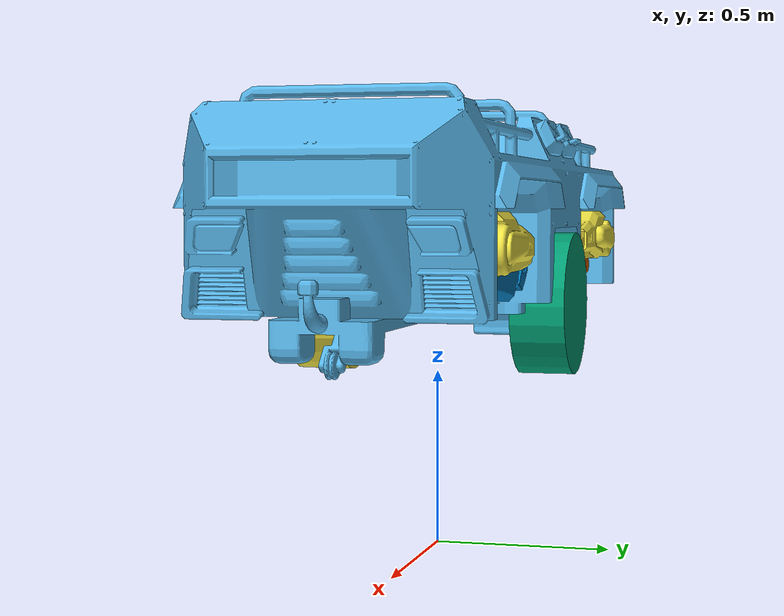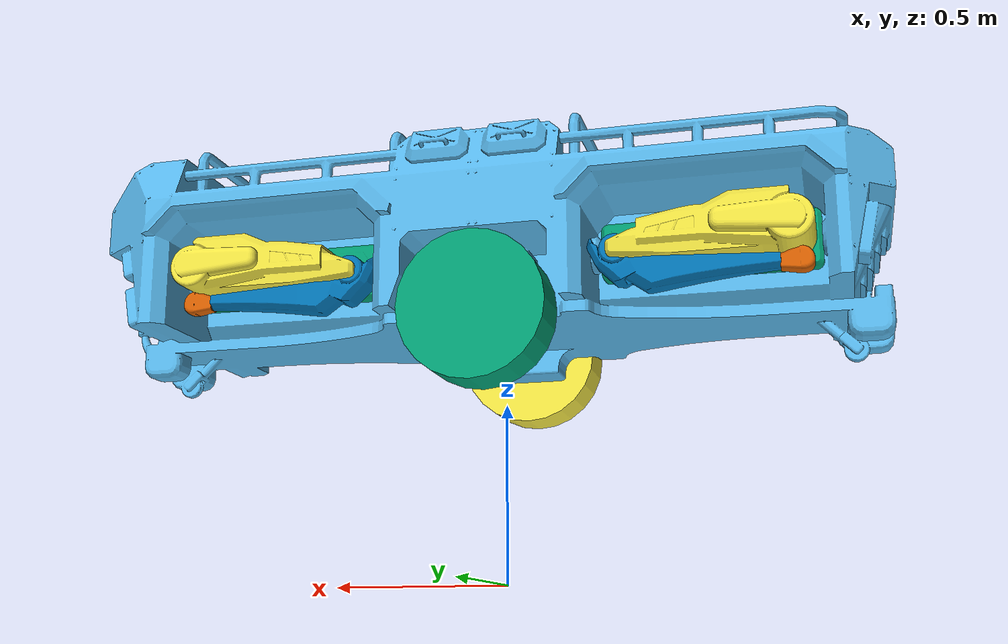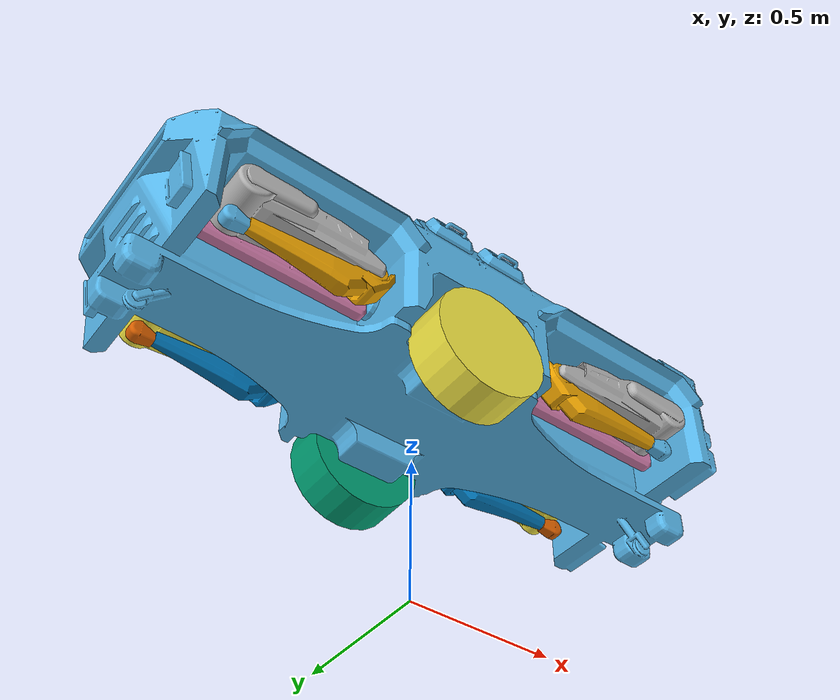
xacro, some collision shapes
<?xml version="1.0"?>

<robot name="kitech_robot" xmlns:xacro="http://ros.org/wiki/xacro">

    <xacro:property name="PI" value="3.1415926535897931"/>

    <!-- ros_control plugin-->
    <xacro:include filename="$(find kitech_robots_description)/urdf/kitech_robot.gazebo.xacro" />

    <!-- kitech robot Body -->
    <xacro:include filename="$(find kitech_robots_description)/urdf/kitech_robot_body.xacro" />
    <xacro:include filename="$(find kitech_robots_description)/urdf/kitech_robot_leg.xacro" />
    <xacro:include filename="$(find kitech_robots_description)/urdf/kitech_robot_wheel.xacro" />

    <!--Using the macros defined above -->
    <!-- body -->
    <xacro:kitech_robot_body />

    <!-- leg -->
    <xacro:kitech_robot_leg
        name="LF"
        reflect_FH="1"
        reflect_RL="1"
        RL="left"
        rotate="0">
    </xacro:kitech_robot_leg>

    <xacro:kitech_robot_leg
        name="RF"
        reflect_FH="1"
        reflect_RL="-1"
        RL="right"
        rotate="0">
    </xacro:kitech_robot_leg>

    <xacro:kitech_robot_leg
        name="LH"
        reflect_FH="-1"
        reflect_RL="1"
        RL="right"
        rotate="1">
    </xacro:kitech_robot_leg>

    <xacro:kitech_robot_leg
        name="RH"
        reflect_FH="-1"
        reflect_RL="-1"
        RL="left"
        rotate="1">
    </xacro:kitech_robot_leg>

    <!-- wheel -->
    <xacro:kitech_robot_wheel
        name="left"
        reflect="1"
        rotate="0">
    </xacro:kitech_robot_wheel>

    <xacro:kitech_robot_wheel
        name="right"
        reflect="-1"
        rotate="1">
    </xacro:kitech_robot_wheel>

</robot>

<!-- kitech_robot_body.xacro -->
<robot xmlns:xacro="http://ros.org/wiki/xacro">

    <!-- body marcro definition -->
    <xacro:macro name="kitech_robot_body">

        <!-- BASE-FOOTPRINT -->
        <!-- base_footprint is a fictitious link(frame) that is on the ground right below body origin -->
        <link name="base_footprint">
        <inertial>
            <origin xyz="0 0 0" />
            <mass value="0.0001" />
            <inertia ixx="0.0001" ixy="0.0" ixz="0.0"
                iyy="0.0001" iyz="0.0"
                izz="0.0001" />
        </inertial>
        <visual>
            <origin xyz="0 0 0" rpy="0 0 0" />
            <geometry>
                <box size="0.001 0.001 0.001" />
            </geometry>
        </visual>
        </link>

        <joint name="footprint_body" type="fixed">
            <origin xyz="0 0 0.5" rpy="0 0 0" />
            <parent link="base_footprint" />
            <child link="body" />
        </joint>

        <link name="body">
        <inertial>
            <origin xyz="0.062594 0.0 0.457496" rpy="0 0 0" />
            <mass value="118.1" />
            <inertia ixx="6.4387768" ixy="-0.0007626" ixz="-0.7441046"
                iyy="46.1852065" iyz="-0.0011013"
                izz="48.0676973" />
        </inertial>
        <visual>
            <origin xyz="0.0 0.0 0.46585" />
            <geometry>
                <mesh filename="package://kitech_robots_description/mesh/for_VREP/Body_with_wheel_plate.stl" scale="0.001 0.001 0.001"/>
            </geometry>
        </visual>
        <collision>
            <origin xyz="0.059 0.0 0.425" />
            <geometry>
                <box size="2.27 0.83 0.702" />
            </geometry>
        </collision>
        </link>

    </xacro:macro>

</robot>

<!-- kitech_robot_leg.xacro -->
<robot xmlns:xacro="http://ros.org/wiki/xacro">

    <!-- body marcro definition -->
    <xacro:macro name="kitech_robot_leg" params="name reflect_FH reflect_RL RL rotate">

        <joint name="${name}_HAA_joint" type="revolute">
            <origin xyz="${reflect_FH*0.816} ${reflect_RL*0.17} 0.37085"/>
            <parent link="body" />
            <child link="${name}_limb_0" />
            <axis xyz="1 0 0" />
            <limit effort="50000" velocity="2000"
            lower="${-PI}"
            upper="${PI}" />
        </joint>

        <link name="${name}_limb_0">
            <inertial>
                <origin xyz="${reflect_FH*(-0.218617)} 0.0 -0.000024" />
                <mass value="11.381" />
                <inertia ixx="0.027746" ixy="0.0" ixz="0.0"
                    iyy="0.331276" iyz="0.0"
                    izz="0.308905" />
            </inertial>
            <visual>
                <origin xyz="0.0 0.0 0.0" rpy="0.0 ${rotate*PI} 0.0"/>
                <geometry>
                    <mesh filename="package://kitech_robots_description/mesh/for_VREP/Limb_0.stl" scale="0.001 0.001 0.001"/>
                </geometry>
            </visual>
            <collision>
                <origin xyz="${reflect_FH*(-0.215)} 0.0 0.0" rpy="0.0 0.0 0.0" />
                <geometry>
                    <box size="0.58 0.054 0.16" />
                </geometry>
            </collision>
        </link>

        <joint name="${name}_HFE_joint" type="revolute">
            <origin xyz="0.0 ${reflect_RL*0.11} 0.0" />
            <parent link="${name}_limb_0" />
            <child link="${name}_limb_1" />
            <axis xyz="0 1 0" />
            <limit effort="50000" velocity="2000"
            lower="${(reflect_FH + 1)*(-PI/2)}"
            upper="${(reflect_FH - 1)*(-PI/2)}" />
        </joint>

        <link name="${name}_limb_1">
            <inertial>
                <origin xyz="${reflect_FH*(-0.146209)} ${reflect_RL*(0.004659)} 0.007285" />
                <mass value="24.551" />
                <inertia ixx="0.096263" ixy="${reflect_RL*(-0.00973)}" ixz="-0.013271"
                    iyy="0.395041" iyz="${reflect_RL*(0.00026)}"
                    izz="0.42336" />
            </inertial>
            <visual>
                <origin xyz="0.0 0.0 0.0" rpy="0.0 0.0 ${rotate*PI}"/>
                <geometry>
                    <mesh filename="package://kitech_robots_description/mesh/for_VREP/Limb_1_${RL}.stl" scale="0.001 0.001 0.001"/>
                </geometry>
            </visual>
            <collision>
                <origin xyz="${reflect_FH*(-0.205)} ${reflect_RL*0.013} 0.0125" rpy="0.0 0.0 ${rotate*PI}" />
                <geometry>
                    <box size="0.53 0.196 0.155" />
                </geometry>
            </collision>
        </link>

        <joint name="${name}_KFE_joint" type="revolute">
            <origin xyz="${reflect_FH*(-0.45)} 0.0 -0.03" />
            <parent link="${name}_limb_1" />
            <child link="${name}_limb_2" />
            <axis xyz="0 1 0" />
            <limit effort="5000" velocity="2000"
            lower="${(reflect_FH - 1)*(PI/2)}"
            upper="${(reflect_FH + 1)*(PI/2)}" />
        </joint>

        <link name="${name}_limb_2">
            <inertial>
                <origin xyz="${reflect_FH*(0.114799)} ${reflect_RL*(-0.000014)} -0.044794" />
                <mass value="6.629" />
                <inertia ixx="0.009829" ixy="0.0" ixz="0.012479"
                    iyy="0.107571" iyz="0.0"
                    izz="0.103829" />
            </inertial>
            <visual>
                <origin xyz="0.0 0.0 0.0" rpy="0.0 0.0 ${rotate*PI}"/>
                <geometry>
                    <mesh filename="package://kitech_robots_description/mesh/for_VREP/Limb_2.stl" scale="0.001 0.001 0.001"/>
                </geometry>
            </visual>
            <collision>
                <origin xyz="${reflect_FH*(0.171323)} 0.0 -0.036283" rpy="0.0 0.0 ${rotate*PI}" />
                <geometry>
                    <box size="0.497 0.095 0.153" />
                </geometry>
            </collision>
        </link>

        <joint name="${name}_foot" type="fixed">
            <origin xyz="${reflect_FH*(0.4187)} 0.0 -0.044234" />
            <parent link="${name}_limb_2" />
            <child link="${name}_foot" />
        </joint>

        <link name="${name}_foot">
            <inertial>
                <origin xyz="${reflect_FH*(0.0442)} ${reflect_RL*(0.000028)} -0.012672" />
                <mass value="0.2" />
                <inertia ixx="0.000083" ixy="0.0" ixz="0.0"
                    iyy="0.000146" iyz="0.0"
                    izz="0.000131" />
            </inertial>
            <visual>
                <origin xyz="0.0 0.0 0.0" rpy="0.0 0.0 ${rotate*PI}"/>
                <geometry>
                    <mesh filename="package://kitech_robots_description/mesh/for_VREP/Foot.stl" scale="0.001 0.001 0.001"/>
                </geometry>
            </visual>
            <collision>
                <origin xyz="${reflect_FH*(0.05)} 0.0 -0.013252" rpy="${PI/2} 0.0 ${rotate*PI}" />
                <geometry>
                    <cylinder length="0.05" radius="0.035" />
                </geometry>
            </collision>
        </link>

	    <transmission name="${name}_HAA_trans">
            <type>transmission_interface/SimpleTransmission</type>
            <joint name="${name}_HAA_joint">
            <hardwareInterface>hardware_interface/EffortJointInterface</hardwareInterface>
            </joint>
            <actuator name="${name}_HAA_motor">
            <hardwareInterface>hardware_interface/EffortJointInterface</hardwareInterface>
            <mechanicalReduction>1</mechanicalReduction>
            </actuator>
        </transmission>

        <transmission name="${name}_HFE_trans">
            <type>transmission_interface/SimpleTransmission</type>
            <joint name="${name}_HFE_joint">
            <hardwareInterface>hardware_interface/EffortJointInterface</hardwareInterface>
            </joint>
            <actuator name="${name}_HFE_motor">
            <hardwareInterface>hardware_interface/EffortJointInterface</hardwareInterface>
            <mechanicalReduction>1</mechanicalReduction>
            </actuator>
        </transmission>

        <transmission name="${name}_KFE_trans">
            <type>transmission_interface/SimpleTransmission</type>
            <joint name="${name}_KFE_joint">
            <hardwareInterface>hardware_interface/EffortJointInterface</hardwareInterface>
            </joint>
            <actuator name="${name}_KFE_motor">
            <hardwareInterface>hardware_interface/EffortJointInterface</hardwareInterface>
            <mechanicalReduction>1</mechanicalReduction>
            </actuator>
        </transmission>

    </xacro:macro>

</robot>

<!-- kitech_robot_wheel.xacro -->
<robot xmlns:xacro="http://ros.org/wiki/xacro">

    <!-- body marcro definition -->
    <xacro:macro name="kitech_robot_wheel" params="name reflect rotate">

        <joint name="${name}_wheel_joint" type="continuous">
            <origin xyz="0.0 ${reflect*0.3} 0.20085" />
            <parent link="body" />
            <child link="${name}_wheel" />
            <axis xyz="0 1 0" />
        </joint>

        <link name="${name}_wheel">
            <inertial>
                <origin xyz="0.0 ${reflect*0.032021} 0.0" />
                <mass value="3.871" />
                <inertia ixx="0.056425" ixy="0.0" ixz="0.0"
                    iyy="0.094098" iyz="0.0"
                    izz="0.056425" />
            </inertial>
            <visual>
                <origin xyz="0.0 0.0 0.0" rpy="${rotate*PI} 0.0 0.0"/>
                <geometry>
                    <mesh filename="package://kitech_robots_description/mesh/for_VREP/Wheel.stl" scale="0.001 0.001 0.001"/>
                </geometry>
            </visual>
            <collision>
                <origin xyz="0.0 ${reflect*0.0265} 0.0" rpy="${PI/2} 0.0 0.0" />
                <geometry>
                    <cylinder length="0.153" radius="0.2005" />
                </geometry>
            </collision>
        </link>

	    <transmission name="${name}_trans">
	      <type>transmission_interface/SimpleTransmission</type>
	      <joint name="${name}_wheel_joint">
            <hardwareInterface>hardware_interface/EffortJointInterface</hardwareInterface>
	      </joint>
	      <actuator name="${name}_motor">
            <hardwareInterface>hardware_interface/EffortJointInterface</hardwareInterface>
	        <mechanicalReduction>1</mechanicalReduction>
	      </actuator>
	    </transmission>

    </xacro:macro>

</robot>
